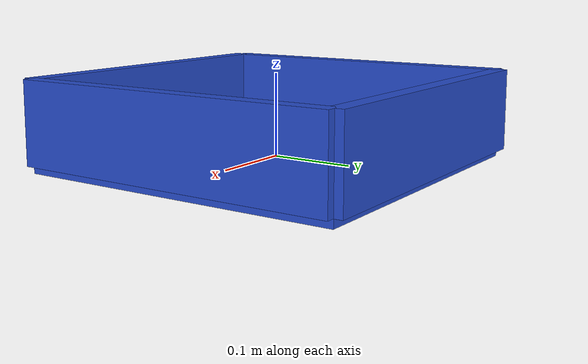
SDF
<sdf version='1.6'>
  <model name='container'>
    <link name='bottom'>
      <pose frame=''>0 0 0 0 -0 0</pose>
      <inertial>
        <pose frame=''>0 0 0.04 0 -0 0</pose>
        <mass>15.0</mass>
        <inertia> <!-- inertias are tricky to compute -->
          <!-- http://gazebosim.org/tutorials?tut=inertia&cat=build_robot -->
          <ixx>1.0</ixx>       <!-- for a box: ixx = 0.083 * mass * (y*y + z*z) -->
          <ixy>0.0</ixy>         <!-- for a box: ixy = 0 -->
          <ixz>0.0</ixz>         <!-- for a box: ixz = 0 -->
          <iyy>1.0</iyy>       <!-- for a box: iyy = 0.083 * mass * (x*x + z*z) -->
          <iyz>0.0</iyz>         <!-- for a box: iyz = 0 -->
          <izz>0.5</izz>       <!-- for a box: izz = 0.083 * mass * (x*x + y*y) -->
        </inertia>
      </inertial>

      <collision name='bottom_collision'>
        <pose frame=''>0 0 0 0 -0 0</pose>
        <geometry>
          <box>
            <size>0.4 0.4 0.02</size>
          </box>
        </geometry>
      </collision>

      <collision name='bottom_fixed_joint_lump__back_collision_1'>
        <pose frame=''>0 0.2 0.05 0 -0 0</pose>
        <geometry>
          <box>
            <size>0.4 0.02 0.1</size>
          </box>
        </geometry>
      </collision>

      <collision name='bottom_fixed_joint_lump__front_collision_2'>
        <pose frame=''>0 -0.2 0.05 0 -0 0</pose>
        <geometry>
          <box>
            <size>0.4 0.02 0.1</size>
          </box>
        </geometry>
      </collision>

      <collision name='bottom_fixed_joint_lump__left_collision_3'>
        <pose frame=''>-0.2 0 0.05 0 -0 0</pose>
        <geometry>
          <box>
            <size>0.02 0.4 0.1</size>
          </box>
        </geometry>
      </collision>

      <collision name='bottom_fixed_joint_lump__right_collision_4'>
        <pose frame=''>0.2 0 0.05 0 -0 0</pose>
        <geometry>
          <box>
            <size>0.02 0.4 0.1</size>
          </box>
        </geometry>
      </collision>

      <visual name='bottom_visual'>
        <pose frame=''>0 0 0 0 -0 0</pose>
        <geometry>
          <box>
            <size>0.4 0.4 0.02</size>
          </box>
        </geometry>
        <material>
          <script>
            <name>Gazebo/Blue</name>
            <uri>file://media/materials/scripts/gazebo.material</uri>
          </script>
        </material>
      </visual>

      <visual name='bottom_fixed_joint_lump__back_visual_1'>
        <pose frame=''>0 0.2 0.05 0 -0 0</pose>
        <geometry>
          <box>
            <size>0.4 0.02 0.1</size>
          </box>
        </geometry>
        <material>
          <script>
            <name>Gazebo/Blue</name>
            <uri>file://media/materials/scripts/gazebo.material</uri>
          </script>
        </material>
      </visual>

      <visual name='bottom_fixed_joint_lump__front_visual_2'>
        <pose frame=''>0 -0.2 0.05 0 -0 0</pose>
        <geometry>
          <box>
            <size>0.4 0.02 0.1</size>
          </box>
        </geometry>
        <material>
          <script>
            <name>Gazebo/Blue</name>
            <uri>file://media/materials/scripts/gazebo.material</uri>
          </script>
        </material>
      </visual>

      <visual name='bottom_fixed_joint_lump__left_visual_3'>
        <pose frame=''>-0.2 0 0.05 0 -0 0</pose>
        <geometry>
          <box>
            <size>0.02 0.4 0.1</size>
          </box>
        </geometry>
        <material>
          <script>
            <name>Gazebo/Blue</name>
            <uri>file://media/materials/scripts/gazebo.material</uri>
          </script>
        </material>
      </visual>

      <visual name='bottom_fixed_joint_lump__right_visual_4'>
        <pose frame=''>0.2 0 0.05 0 -0 0</pose>
        <geometry>
          <box>
            <size>0.02 0.4 0.1</size>
          </box>
        </geometry>
        <material>
          <script>
            <name>Gazebo/Blue</name>
            <uri>file://media/materials/scripts/gazebo.material</uri>
          </script>
        </material>
      </visual>

    </link>
  </model>
</sdf>
